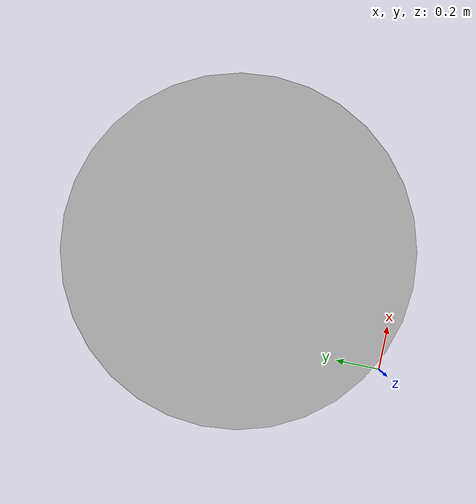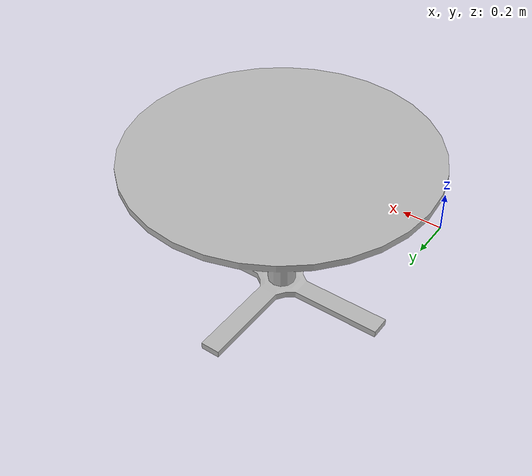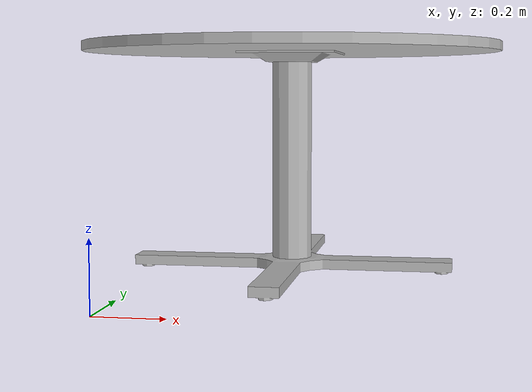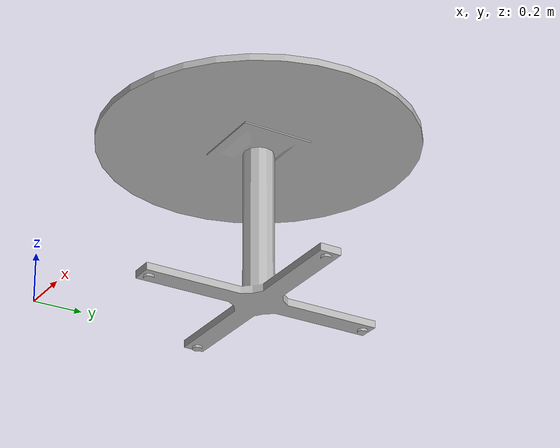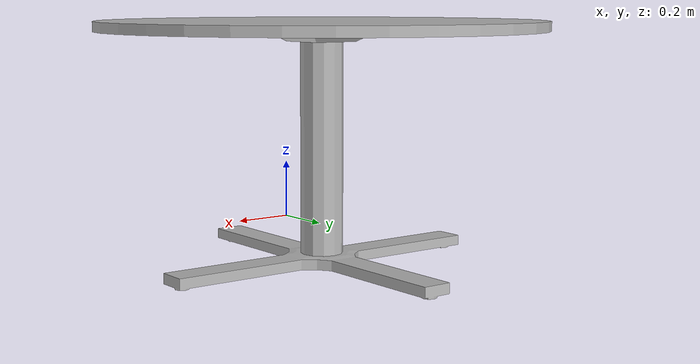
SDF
<?xml version="1.0"?>
<sdf version="1.6">
  <model name="bar_table">
    <static>true</static>
    <link name="l">
      <visual name="v">
        <pose>0.4 0.75 0.46 1.5708 0 0</pose>
        <geometry>
          <mesh>
            <uri>model://bar_table/meshes/bar_table.obj</uri>
            <scale>0.029545 0.0144 0.029545</scale>
          </mesh>
        </geometry>
      </visual>
      <!-- Collisione cilindrica (tavolo tondo): la lattina servita si appoggia sul
           top (z~0.72) invece di cadere. -->
      <collision name="c">
        <pose>0.4 0.75 0.36 0 0 0</pose>
        <geometry>
          <cylinder><radius>0.65</radius><length>0.72</length></cylinder>
        </geometry>
      </collision>
    </link>
  </model>
</sdf>
